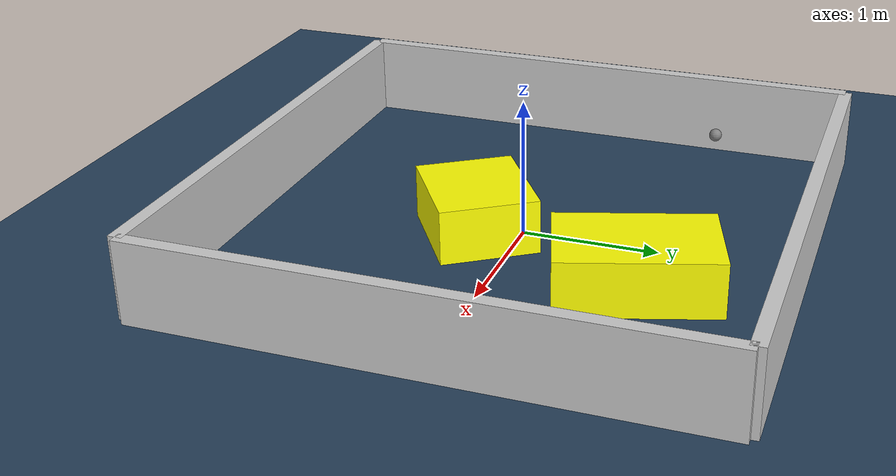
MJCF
<?xml version="1.0" ?>
<mujoco model="generated_environment">
  <option timestep="0.01" integrator="RK4" cone="elliptic"/>
  <default>
    <geom density="1"/>
  </default>
  <asset>
    <texture builtin="gradient" height="3072" rgb1="0.3 0.5 0.7" rgb2="0 0 0" type="skybox" width="512"/>
    <texture builtin="checker" height="300" mark="edge" markrgb="0.8 0.8 0.8" name="groundplane" rgb1="0.2 0.3 0.4" rgb2="0.1 0.2 0.3" type="2d" width="300"/>
    <material name="groundplane" reflectance="0.2" texrepeat="5 5" texture="groundplane" texuniform="true"/>
    <material name="robot" rgba="0.0 1.0 0.0 1"/>
  </asset>
  <worldbody>
    <light dir="0 0 -1" directional="true" pos="0 0 1.5"/>
    <geom condim="4" friction="1.0 0.005 0.001" material="groundplane" name="floor" size="0 0 0.05" type="plane"/>
    <body name="walls">
      <geom name="wall_1" condim="4" pos="-2.0 0.0 0.3" rgba="0.800000011920929 0.800000011920929 0.800000011920929 1.0" size="0.05 2.0 0.3" type="box"/>
      <geom name="wall_2" condim="4" pos="2.0 0.0 0.3" rgba="0.800000011920929 0.800000011920929 0.800000011920929 1.0" size="0.05 2.0 0.3" type="box"/>
      <geom name="wall_3" condim="4" pos="0.0 -2.0 0.3" rgba="0.800000011920929 0.800000011920929 0.800000011920929 1.0" size="2.0 0.05 0.3" type="box"/>
      <geom name="wall_4" condim="4" pos="0.0 2.0 0.3" rgba="0.800000011920929 0.800000011920929 0.800000011920929 1.0" size="2.0 0.05 0.3" type="box"/>
    </body>
    <body name="robot">
      <joint name="joint_x" type="slide" pos="0 0 0" axis="1 0 0"/>
      <joint name="joint_y" type="slide" pos="0 0 0" axis="0 1 0"/>
      <geom name="robot" type="sphere" pos="-1.7731293064317855 1.033324152418329 0.2" size="0.05" mass="5." friction="1.0 0.005 0.0001" condim="4"/>
      <site name="sensor_ball"/>
    </body>
    <body name="obstacle_1_movable">
      <geom name="obstacle_1_movable" condim="4" pos="0.5806490226351471 0.9804213643438069 0.2" euler="0 0 287.44841900049045" friction="1.0 0.005 0.001" rgba="1 1 0 1" size="0.5624750046444598 0.36290331560706035 0.2" type="box" mass="0.1"/>
      <joint type="free"/>
    </body>
    <body name="obstacle_2_movable">
      <geom name="obstacle_2_movable" condim="4" pos="0.12207066405198441 -0.3105469148009894 0.2" euler="0 0 33.9389071815898" friction="1.0 0.005 0.001" rgba="1 1 0 1" size="0.4077001268589548 0.3584611280864354 0.2" type="box" mass="0.1"/>
      <joint type="free"/>
    </body>
  </worldbody>
  <actuator>
    <motor name="actuator_x" joint="joint_x" gear="1" ctrlrange="-1 1"/>
    <motor name="actuator_y" joint="joint_y" gear="1" ctrlrange="-1 1"/>
  </actuator>
</mujoco>
